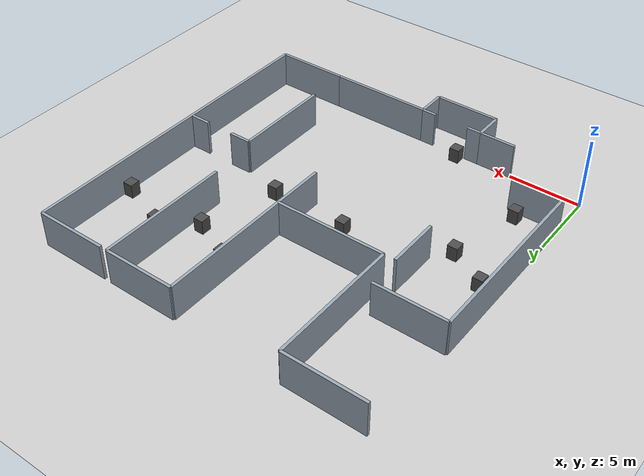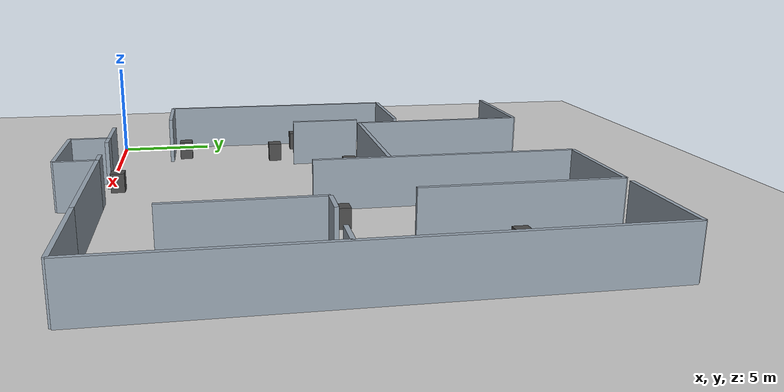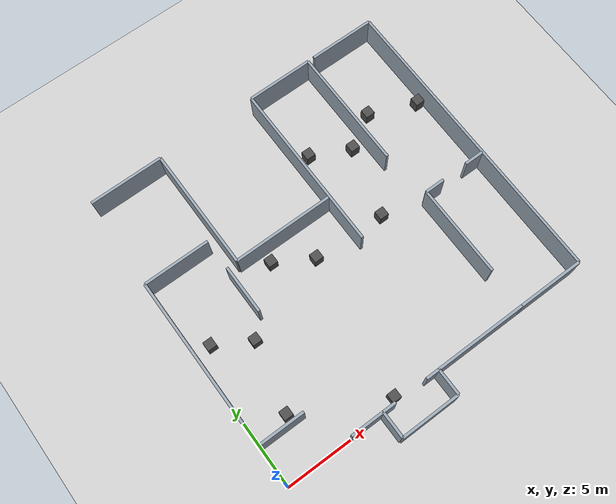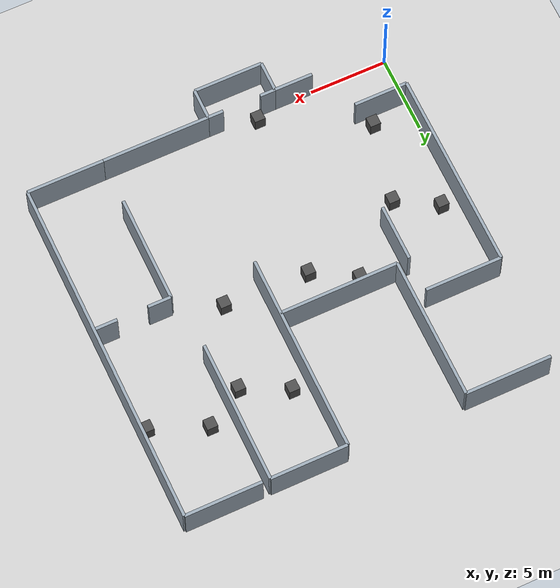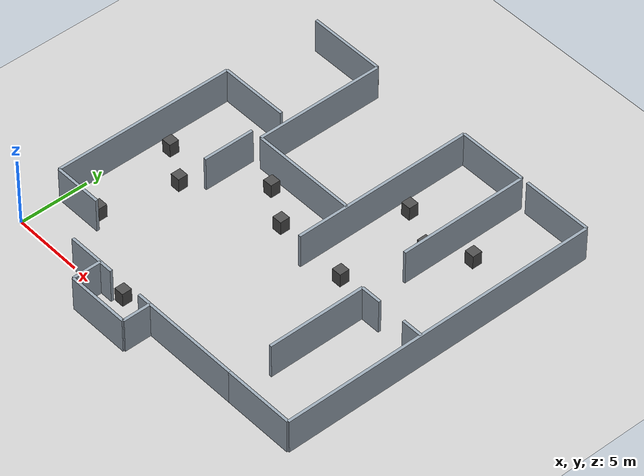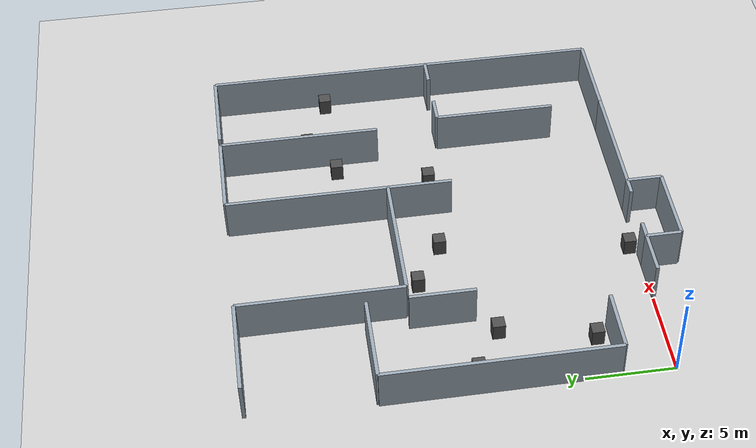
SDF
<?xml version="1.0" ?>
<sdf version="1.6">
  <world name="localization_recovery_world">
    <!-- 태양광 조명 -->
    <include>
      <uri>model://sun</uri>
    </include>

    <!-- 바닥 (Ground Plane) -->
    <include>
      <uri>model://ground_plane</uri>
    </include>

    <!-- 물리 엔진 설정 (ODE 최적화) -->
    <physics type="ode">
      <real_time_update_rate>1000.0</real_time_update_rate>
      <max_step_size>0.001</max_step_size>
      <real_time_factor>1.0</real_time_factor>
      <ode>
        <solver>
          <type>quick</type>
          <iters>150</iters>
          <precon_iters>0</precon_iters>
          <sor>1.4</sor>
          <use_dynamic_moi_rescaling>1</use_dynamic_moi_rescaling>
        </solver>
        <constraints>
          <cfm>0.00001</cfm>
          <erp>0.2</erp>
          <contact_max_correcting_vel>2000.0</contact_max_correcting_vel>
          <contact_surface_layer>0.01</contact_surface_layer>
        </constraints>
      </ode>
    </physics>

    <!-- GUI 초기 카메라 조감도 시점 (24m x 23m 맵 중앙 상공에서 조감) -->
    <gui fullscreen="0">
      <camera name="overview_camera">
        <pose>12.0 10.0 36.0 0.0 1.25 1.5707</pose>
        <view_controller>orbit</view_controller>
      </camera>
    </gui>

    <!-- 복원된 도면(gazebo_world_555.png) 기반 맵 모델 -->
    <model name="localization_recovery_map">
      <static>true</static>
      <allow_auto_disable>true</allow_auto_disable>

    <link name="north_wall_start">
      <pose>3.000 23.000 1.250 0 0 0</pose>
      <collision name="collision">
        <geometry>
          <box>
            <size>5.600 0.200 2.500</size>
          </box>
        </geometry>
      </collision>
      <visual name="visual">
        <geometry>
          <box>
            <size>5.600 0.200 2.500</size>
          </box>
        </geometry>
        <material>
          <ambient>0.4 0.45 0.5 1.0</ambient>
          <diffuse>0.6 0.65 0.7 1.0</diffuse>
          <script>
            <uri>file://media/materials/scripts/gazebo.material</uri>
            <name>Gazebo/Grey</name>
          </script>
        </material>
      </visual>
    </link>

    <link name="start_east_wall">
      <pose>5.800 18.350 1.250 0 0 0</pose>
      <collision name="collision">
        <geometry>
          <box>
            <size>0.200 9.300 2.500</size>
          </box>
        </geometry>
      </collision>
      <visual name="visual">
        <geometry>
          <box>
            <size>0.200 9.300 2.500</size>
          </box>
        </geometry>
        <material>
          <ambient>0.4 0.45 0.5 1.0</ambient>
          <diffuse>0.6 0.65 0.7 1.0</diffuse>
          <script>
            <uri>file://media/materials/scripts/gazebo.material</uri>
            <name>Gazebo/Grey</name>
          </script>
        </material>
      </visual>
    </link>

    <link name="north_wall_mid">
      <pose>16.000 23.000 1.250 0 0 0</pose>
      <collision name="collision">
        <geometry>
          <box>
            <size>5.000 0.200 2.500</size>
          </box>
        </geometry>
      </collision>
      <visual name="visual">
        <geometry>
          <box>
            <size>5.000 0.200 2.500</size>
          </box>
        </geometry>
        <material>
          <ambient>0.4 0.45 0.5 1.0</ambient>
          <diffuse>0.6 0.65 0.7 1.0</diffuse>
          <script>
            <uri>file://media/materials/scripts/gazebo.material</uri>
            <name>Gazebo/Grey</name>
          </script>
        </material>
      </visual>
    </link>

    <link name="north_wall_goal">
      <pose>21.500 23.000 1.250 0 0 0</pose>
      <collision name="collision">
        <geometry>
          <box>
            <size>5.000 0.200 2.500</size>
          </box>
        </geometry>
      </collision>
      <visual name="visual">
        <geometry>
          <box>
            <size>5.000 0.200 2.500</size>
          </box>
        </geometry>
        <material>
          <ambient>0.4 0.45 0.5 1.0</ambient>
          <diffuse>0.6 0.65 0.7 1.0</diffuse>
          <script>
            <uri>file://media/materials/scripts/gazebo.material</uri>
            <name>Gazebo/Grey</name>
          </script>
        </material>
      </visual>
    </link>

    <link name="east_outer_wall">
      <pose>24.000 11.500 1.250 0 0 0</pose>
      <collision name="collision">
        <geometry>
          <box>
            <size>0.200 23.000 2.500</size>
          </box>
        </geometry>
      </collision>
      <visual name="visual">
        <geometry>
          <box>
            <size>0.200 23.000 2.500</size>
          </box>
        </geometry>
        <material>
          <ambient>0.4 0.45 0.5 1.0</ambient>
          <diffuse>0.6 0.65 0.7 1.0</diffuse>
          <script>
            <uri>file://media/materials/scripts/gazebo.material</uri>
            <name>Gazebo/Grey</name>
          </script>
        </material>
      </visual>
    </link>

    <link name="south_wall_goal">
      <pose>21.500 0.000 1.250 0 0 0</pose>
      <collision name="collision">
        <geometry>
          <box>
            <size>5.000 0.200 2.500</size>
          </box>
        </geometry>
      </collision>
      <visual name="visual">
        <geometry>
          <box>
            <size>5.000 0.200 2.500</size>
          </box>
        </geometry>
        <material>
          <ambient>0.4 0.45 0.5 1.0</ambient>
          <diffuse>0.6 0.65 0.7 1.0</diffuse>
          <script>
            <uri>file://media/materials/scripts/gazebo.material</uri>
            <name>Gazebo/Grey</name>
          </script>
        </material>
      </visual>
    </link>

    <link name="south_wall_mid">
      <pose>15.500 0.000 1.250 0 0 0</pose>
      <collision name="collision">
        <geometry>
          <box>
            <size>7.000 0.200 2.500</size>
          </box>
        </geometry>
      </collision>
      <visual name="visual">
        <geometry>
          <box>
            <size>7.000 0.200 2.500</size>
          </box>
        </geometry>
        <material>
          <ambient>0.4 0.45 0.5 1.0</ambient>
          <diffuse>0.6 0.65 0.7 1.0</diffuse>
          <script>
            <uri>file://media/materials/scripts/gazebo.material</uri>
            <name>Gazebo/Grey</name>
          </script>
        </material>
      </visual>
    </link>

    <link name="trap_lip_right">
      <pose>11.500 0.000 1.250 0 0 0</pose>
      <collision name="collision">
        <geometry>
          <box>
            <size>1.000 0.200 2.500</size>
          </box>
        </geometry>
      </collision>
      <visual name="visual">
        <geometry>
          <box>
            <size>1.000 0.200 2.500</size>
          </box>
        </geometry>
        <material>
          <ambient>0.4 0.45 0.5 1.0</ambient>
          <diffuse>0.6 0.65 0.7 1.0</diffuse>
          <script>
            <uri>file://media/materials/scripts/gazebo.material</uri>
            <name>Gazebo/Grey</name>
          </script>
        </material>
      </visual>
    </link>

    <link name="trap_east_wall">
      <pose>12.000 -1.000 1.250 0 0 0</pose>
      <collision name="collision">
        <geometry>
          <box>
            <size>0.200 2.000 2.500</size>
          </box>
        </geometry>
      </collision>
      <visual name="visual">
        <geometry>
          <box>
            <size>0.200 2.000 2.500</size>
          </box>
        </geometry>
        <material>
          <ambient>0.4 0.45 0.5 1.0</ambient>
          <diffuse>0.6 0.65 0.7 1.0</diffuse>
          <script>
            <uri>file://media/materials/scripts/gazebo.material</uri>
            <name>Gazebo/Grey</name>
          </script>
        </material>
      </visual>
    </link>

    <link name="trap_south_wall">
      <pose>9.750 -2.000 1.250 0 0 0</pose>
      <collision name="collision">
        <geometry>
          <box>
            <size>4.500 0.200 2.500</size>
          </box>
        </geometry>
      </collision>
      <visual name="visual">
        <geometry>
          <box>
            <size>4.500 0.200 2.500</size>
          </box>
        </geometry>
        <material>
          <ambient>0.4 0.45 0.5 1.0</ambient>
          <diffuse>0.6 0.65 0.7 1.0</diffuse>
          <script>
            <uri>file://media/materials/scripts/gazebo.material</uri>
            <name>Gazebo/Grey</name>
          </script>
        </material>
      </visual>
    </link>

    <link name="trap_west_wall">
      <pose>7.500 -1.000 1.250 0 0 0</pose>
      <collision name="collision">
        <geometry>
          <box>
            <size>0.200 2.000 2.500</size>
          </box>
        </geometry>
      </collision>
      <visual name="visual">
        <geometry>
          <box>
            <size>0.200 2.000 2.500</size>
          </box>
        </geometry>
        <material>
          <ambient>0.4 0.45 0.5 1.0</ambient>
          <diffuse>0.6 0.65 0.7 1.0</diffuse>
          <script>
            <uri>file://media/materials/scripts/gazebo.material</uri>
            <name>Gazebo/Grey</name>
          </script>
        </material>
      </visual>
    </link>

    <link name="trap_lip_left">
      <pose>8.000 0.000 1.250 0 0 0</pose>
      <collision name="collision">
        <geometry>
          <box>
            <size>1.000 0.200 2.500</size>
          </box>
        </geometry>
      </collision>
      <visual name="visual">
        <geometry>
          <box>
            <size>1.000 0.200 2.500</size>
          </box>
        </geometry>
        <material>
          <ambient>0.4 0.45 0.5 1.0</ambient>
          <diffuse>0.6 0.65 0.7 1.0</diffuse>
          <script>
            <uri>file://media/materials/scripts/gazebo.material</uri>
            <name>Gazebo/Grey</name>
          </script>
        </material>
      </visual>
    </link>

    <link name="south_wall_left">
      <pose>6.250 0.000 1.250 0 0 0</pose>
      <collision name="collision">
        <geometry>
          <box>
            <size>2.500 0.200 2.500</size>
          </box>
        </geometry>
      </collision>
      <visual name="visual">
        <geometry>
          <box>
            <size>2.500 0.200 2.500</size>
          </box>
        </geometry>
        <material>
          <ambient>0.4 0.45 0.5 1.0</ambient>
          <diffuse>0.6 0.65 0.7 1.0</diffuse>
          <script>
            <uri>file://media/materials/scripts/gazebo.material</uri>
            <name>Gazebo/Grey</name>
          </script>
        </material>
      </visual>
    </link>

    <link name="left_corridor_south_wall">
      <pose>1.750 3.000 1.250 0 0 0</pose>
      <collision name="collision">
        <geometry>
          <box>
            <size>3.500 0.200 2.500</size>
          </box>
        </geometry>
      </collision>
      <visual name="visual">
        <geometry>
          <box>
            <size>3.500 0.200 2.500</size>
          </box>
        </geometry>
        <material>
          <ambient>0.4 0.45 0.5 1.0</ambient>
          <diffuse>0.6 0.65 0.7 1.0</diffuse>
          <script>
            <uri>file://media/materials/scripts/gazebo.material</uri>
            <name>Gazebo/Grey</name>
          </script>
        </material>
      </visual>
    </link>

    <link name="west_outer_wall">
      <pose>0.000 9.500 1.250 0 0 0</pose>
      <collision name="collision">
        <geometry>
          <box>
            <size>0.200 13.000 2.500</size>
          </box>
        </geometry>
      </collision>
      <visual name="visual">
        <geometry>
          <box>
            <size>0.200 13.000 2.500</size>
          </box>
        </geometry>
        <material>
          <ambient>0.4 0.45 0.5 1.0</ambient>
          <diffuse>0.6 0.65 0.7 1.0</diffuse>
          <script>
            <uri>file://media/materials/scripts/gazebo.material</uri>
            <name>Gazebo/Grey</name>
          </script>
        </material>
      </visual>
    </link>

    <link name="left_corridor_north_wall">
      <pose>2.500 16.000 1.250 0 0 0</pose>
      <collision name="collision">
        <geometry>
          <box>
            <size>5.000 0.200 2.500</size>
          </box>
        </geometry>
      </collision>
      <visual name="visual">
        <geometry>
          <box>
            <size>5.000 0.200 2.500</size>
          </box>
        </geometry>
        <material>
          <ambient>0.4 0.45 0.5 1.0</ambient>
          <diffuse>0.6 0.65 0.7 1.0</diffuse>
          <script>
            <uri>file://media/materials/scripts/gazebo.material</uri>
            <name>Gazebo/Grey</name>
          </script>
        </material>
      </visual>
    </link>

    <link name="left_corridor_inner_wall">
      <pose>5.000 11.850 1.250 0 0 0</pose>
      <collision name="collision">
        <geometry>
          <box>
            <size>0.200 3.700 2.500</size>
          </box>
        </geometry>
      </collision>
      <visual name="visual">
        <geometry>
          <box>
            <size>0.200 3.700 2.500</size>
          </box>
        </geometry>
        <material>
          <ambient>0.4 0.45 0.5 1.0</ambient>
          <diffuse>0.6 0.65 0.7 1.0</diffuse>
          <script>
            <uri>file://media/materials/scripts/gazebo.material</uri>
            <name>Gazebo/Grey</name>
          </script>
        </material>
      </visual>
    </link>

    <link name="mid_h_corridor_north_wall">
      <pose>9.650 13.700 1.250 0 0 0</pose>
      <collision name="collision">
        <geometry>
          <box>
            <size>7.700 0.200 2.500</size>
          </box>
        </geometry>
      </collision>
      <visual name="visual">
        <geometry>
          <box>
            <size>7.700 0.200 2.500</size>
          </box>
        </geometry>
        <material>
          <ambient>0.4 0.45 0.5 1.0</ambient>
          <diffuse>0.6 0.65 0.7 1.0</diffuse>
          <script>
            <uri>file://media/materials/scripts/gazebo.material</uri>
            <name>Gazebo/Grey</name>
          </script>
        </material>
      </visual>
    </link>

    <link name="mid_v_corridor_west_wall">
      <pose>13.500 16.500 1.250 0 0 0</pose>
      <collision name="collision">
        <geometry>
          <box>
            <size>0.200 13.000 2.500</size>
          </box>
        </geometry>
      </collision>
      <visual name="visual">
        <geometry>
          <box>
            <size>0.200 13.000 2.500</size>
          </box>
        </geometry>
        <material>
          <ambient>0.4 0.45 0.5 1.0</ambient>
          <diffuse>0.6 0.65 0.7 1.0</diffuse>
          <script>
            <uri>file://media/materials/scripts/gazebo.material</uri>
            <name>Gazebo/Grey</name>
          </script>
        </material>
      </visual>
    </link>

    <link name="mid_v_corridor_east_wall">
      <pose>18.500 18.350 1.250 0 0 0</pose>
      <collision name="collision">
        <geometry>
          <box>
            <size>0.200 9.300 2.500</size>
          </box>
        </geometry>
      </collision>
      <visual name="visual">
        <geometry>
          <box>
            <size>0.200 9.300 2.500</size>
          </box>
        </geometry>
        <material>
          <ambient>0.4 0.45 0.5 1.0</ambient>
          <diffuse>0.6 0.65 0.7 1.0</diffuse>
          <script>
            <uri>file://media/materials/scripts/gazebo.material</uri>
            <name>Gazebo/Grey</name>
          </script>
        </material>
      </visual>
    </link>

    <link name="c_corridor_west_wall">
      <pose>19.000 6.500 1.250 0 0 0</pose>
      <collision name="collision">
        <geometry>
          <box>
            <size>0.200 7.000 2.500</size>
          </box>
        </geometry>
      </collision>
      <visual name="visual">
        <geometry>
          <box>
            <size>0.200 7.000 2.500</size>
          </box>
        </geometry>
        <material>
          <ambient>0.4 0.45 0.5 1.0</ambient>
          <diffuse>0.6 0.65 0.7 1.0</diffuse>
          <script>
            <uri>file://media/materials/scripts/gazebo.material</uri>
            <name>Gazebo/Grey</name>
          </script>
        </material>
      </visual>
    </link>

    <link name="cd_corridor_divider_left">
      <pose>19.750 10.000 1.250 0 0 0</pose>
      <collision name="collision">
        <geometry>
          <box>
            <size>1.500 0.200 2.500</size>
          </box>
        </geometry>
      </collision>
      <visual name="visual">
        <geometry>
          <box>
            <size>1.500 0.200 2.500</size>
          </box>
        </geometry>
        <material>
          <ambient>0.4 0.45 0.5 1.0</ambient>
          <diffuse>0.6 0.65 0.7 1.0</diffuse>
          <script>
            <uri>file://media/materials/scripts/gazebo.material</uri>
            <name>Gazebo/Grey</name>
          </script>
        </material>
      </visual>
    </link>

    <link name="cd_corridor_divider_right">
      <pose>23.250 10.000 1.250 0 0 0</pose>
      <collision name="collision">
        <geometry>
          <box>
            <size>1.500 0.200 2.500</size>
          </box>
        </geometry>
      </collision>
      <visual name="visual">
        <geometry>
          <box>
            <size>1.500 0.200 2.500</size>
          </box>
        </geometry>
        <material>
          <ambient>0.4 0.45 0.5 1.0</ambient>
          <diffuse>0.6 0.65 0.7 1.0</diffuse>
          <script>
            <uri>file://media/materials/scripts/gazebo.material</uri>
            <name>Gazebo/Grey</name>
          </script>
        </material>
      </visual>
    </link>

    <link name="obs_left_1">
      <pose>1.200 10.500 0.500 0 0 0</pose>
      <collision name="collision">
        <geometry>
          <box>
            <size>0.700 0.700 1.000</size>
          </box>
        </geometry>
      </collision>
      <visual name="visual">
        <geometry>
          <box>
            <size>0.700 0.700 1.000</size>
          </box>
        </geometry>
        <material>
          <ambient>0.2 0.25 0.3 1.0</ambient>
          <diffuse>0.3 0.35 0.4 1.0</diffuse>
          <script>
            <uri>file://media/materials/scripts/gazebo.material</uri>
            <name>Gazebo/DarkGrey</name>
          </script>
        </material>
      </visual>
    </link>

    <link name="obs_left_2">
      <pose>3.800 9.000 0.500 0 0 0</pose>
      <collision name="collision">
        <geometry>
          <box>
            <size>0.700 0.700 1.000</size>
          </box>
        </geometry>
      </collision>
      <visual name="visual">
        <geometry>
          <box>
            <size>0.700 0.700 1.000</size>
          </box>
        </geometry>
        <material>
          <ambient>0.2 0.25 0.3 1.0</ambient>
          <diffuse>0.3 0.35 0.4 1.0</diffuse>
          <script>
            <uri>file://media/materials/scripts/gazebo.material</uri>
            <name>Gazebo/DarkGrey</name>
          </script>
        </material>
      </visual>
    </link>

    <link name="obs_left_3">
      <pose>2.600 3.800 0.500 0 0 0</pose>
      <collision name="collision">
        <geometry>
          <box>
            <size>0.700 0.700 1.000</size>
          </box>
        </geometry>
      </collision>
      <visual name="visual">
        <geometry>
          <box>
            <size>0.700 0.700 1.000</size>
          </box>
        </geometry>
        <material>
          <ambient>0.2 0.25 0.3 1.0</ambient>
          <diffuse>0.3 0.35 0.4 1.0</diffuse>
          <script>
            <uri>file://media/materials/scripts/gazebo.material</uri>
            <name>Gazebo/DarkGrey</name>
          </script>
        </material>
      </visual>
    </link>

    <link name="obs_mid_h_1">
      <pose>7.800 12.800 0.500 0 0 0</pose>
      <collision name="collision">
        <geometry>
          <box>
            <size>0.700 0.700 1.000</size>
          </box>
        </geometry>
      </collision>
      <visual name="visual">
        <geometry>
          <box>
            <size>0.700 0.700 1.000</size>
          </box>
        </geometry>
        <material>
          <ambient>0.2 0.25 0.3 1.0</ambient>
          <diffuse>0.3 0.35 0.4 1.0</diffuse>
          <script>
            <uri>file://media/materials/scripts/gazebo.material</uri>
            <name>Gazebo/DarkGrey</name>
          </script>
        </material>
      </visual>
    </link>

    <link name="obs_mid_h_2">
      <pose>10.500 11.200 0.500 0 0 0</pose>
      <collision name="collision">
        <geometry>
          <box>
            <size>0.700 0.700 1.000</size>
          </box>
        </geometry>
      </collision>
      <visual name="visual">
        <geometry>
          <box>
            <size>0.700 0.700 1.000</size>
          </box>
        </geometry>
        <material>
          <ambient>0.2 0.25 0.3 1.0</ambient>
          <diffuse>0.3 0.35 0.4 1.0</diffuse>
          <script>
            <uri>file://media/materials/scripts/gazebo.material</uri>
            <name>Gazebo/DarkGrey</name>
          </script>
        </material>
      </visual>
    </link>

    <link name="obs_mid_v_1">
      <pose>14.600 17.700 0.500 0 0 0</pose>
      <collision name="collision">
        <geometry>
          <box>
            <size>0.700 0.700 1.000</size>
          </box>
        </geometry>
      </collision>
      <visual name="visual">
        <geometry>
          <box>
            <size>0.700 0.700 1.000</size>
          </box>
        </geometry>
        <material>
          <ambient>0.2 0.25 0.3 1.0</ambient>
          <diffuse>0.3 0.35 0.4 1.0</diffuse>
          <script>
            <uri>file://media/materials/scripts/gazebo.material</uri>
            <name>Gazebo/DarkGrey</name>
          </script>
        </material>
      </visual>
    </link>

    <link name="obs_mid_v_2">
      <pose>17.500 16.300 0.500 0 0 0</pose>
      <collision name="collision">
        <geometry>
          <box>
            <size>0.700 0.700 1.000</size>
          </box>
        </geometry>
      </collision>
      <visual name="visual">
        <geometry>
          <box>
            <size>0.700 0.700 1.000</size>
          </box>
        </geometry>
        <material>
          <ambient>0.2 0.25 0.3 1.0</ambient>
          <diffuse>0.3 0.35 0.4 1.0</diffuse>
          <script>
            <uri>file://media/materials/scripts/gazebo.material</uri>
            <name>Gazebo/DarkGrey</name>
          </script>
        </material>
      </visual>
    </link>

    <link name="obs_mid_v_3">
      <pose>16.000 11.000 0.500 0 0 0</pose>
      <collision name="collision">
        <geometry>
          <box>
            <size>0.700 0.700 1.000</size>
          </box>
        </geometry>
      </collision>
      <visual name="visual">
        <geometry>
          <box>
            <size>0.700 0.700 1.000</size>
          </box>
        </geometry>
        <material>
          <ambient>0.2 0.25 0.3 1.0</ambient>
          <diffuse>0.3 0.35 0.4 1.0</diffuse>
          <script>
            <uri>file://media/materials/scripts/gazebo.material</uri>
            <name>Gazebo/DarkGrey</name>
          </script>
        </material>
      </visual>
    </link>

    <link name="obs_goal_1">
      <pose>20.000 17.800 0.500 0 0 0</pose>
      <collision name="collision">
        <geometry>
          <box>
            <size>0.700 0.700 1.000</size>
          </box>
        </geometry>
      </collision>
      <visual name="visual">
        <geometry>
          <box>
            <size>0.700 0.700 1.000</size>
          </box>
        </geometry>
        <material>
          <ambient>0.2 0.25 0.3 1.0</ambient>
          <diffuse>0.3 0.35 0.4 1.0</diffuse>
          <script>
            <uri>file://media/materials/scripts/gazebo.material</uri>
            <name>Gazebo/DarkGrey</name>
          </script>
        </material>
      </visual>
    </link>

    <link name="obs_goal_2">
      <pose>23.500 16.400 0.500 0 0 0</pose>
      <collision name="collision">
        <geometry>
          <box>
            <size>0.700 0.700 1.000</size>
          </box>
        </geometry>
      </collision>
      <visual name="visual">
        <geometry>
          <box>
            <size>0.700 0.700 1.000</size>
          </box>
        </geometry>
        <material>
          <ambient>0.2 0.25 0.3 1.0</ambient>
          <diffuse>0.3 0.35 0.4 1.0</diffuse>
          <script>
            <uri>file://media/materials/scripts/gazebo.material</uri>
            <name>Gazebo/DarkGrey</name>
          </script>
        </material>
      </visual>
    </link>

    <link name="obs_trap_1">
      <pose>8.900 0.500 0.500 0 0 0</pose>
      <collision name="collision">
        <geometry>
          <box>
            <size>0.700 0.700 1.000</size>
          </box>
        </geometry>
      </collision>
      <visual name="visual">
        <geometry>
          <box>
            <size>0.700 0.700 1.000</size>
          </box>
        </geometry>
        <material>
          <ambient>0.2 0.25 0.3 1.0</ambient>
          <diffuse>0.3 0.35 0.4 1.0</diffuse>
          <script>
            <uri>file://media/materials/scripts/gazebo.material</uri>
            <name>Gazebo/DarkGrey</name>
          </script>
        </material>
      </visual>
    </link>
    </model>

  </world>
</sdf>
